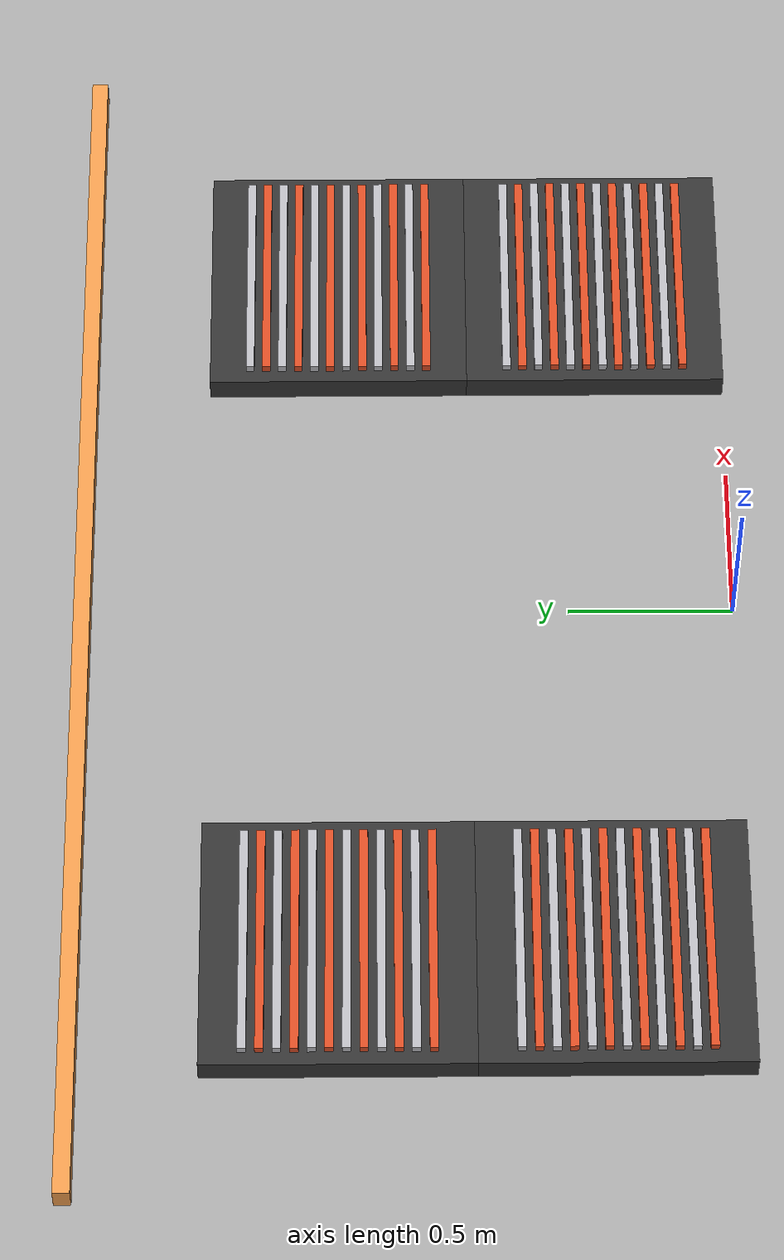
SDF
<sdf version="1.9">
 <world name="electrolysis_8_baths_world">
  <model name="ground_plane">
   <static>true</static>
   <link name="link">
    <collision name="collision">
     <geometry><plane><normal>0 0 1</normal><size>20 20</size></plane></geometry>
    </collision>
    <visual name="visual">
     <geometry><plane><normal>0 0 1</normal><size>20 20</size></plane></geometry>
     <material><ambient>0.65 0.65 0.65 1</ambient><diffuse>0.65 0.65 0.65 1</diffuse></material>
    </visual>
   </link>
  </model>
  <model name="bath_3">
   <static>true</static>
   <pose>-1.2000 0.4000 0.0600 0 0 0</pose>
   <link name="link">
    <collision name="collision"><geometry><box><size>0.8000 0.8000 0.0800</size></box></geometry></collision>
    <visual name="visual">
     <geometry><box><size>0.8000 0.8000 0.0800</size></box></geometry>
     <material><ambient>0.20 0.20 0.20 1</ambient><diffuse>0.20 0.20 0.20 1</diffuse></material>
    </visual>
   </link>
  </model>
  <model name="bath_3_anode_01">
   <static>true</static>
   <pose>-1.2000 0.1250 0.1125 0 0 0</pose>
   <link name="link">
    <collision name="collision"><geometry><box><size>0.7200 0.0250 0.0250</size></box></geometry></collision>
    <visual name="visual">
     <geometry><box><size>0.7200 0.0250 0.0250</size></box></geometry>
     <material><ambient>0.85 0.30 0.14 1</ambient><diffuse>0.85 0.30 0.14 1</diffuse></material>
    </visual>
   </link>
  </model>
  <model name="bath_3_cathode_02">
   <static>true</static>
   <pose>-1.2000 0.1750 0.1125 0 0 0</pose>
   <link name="link">
    <collision name="collision"><geometry><box><size>0.7200 0.0250 0.0250</size></box></geometry></collision>
    <visual name="visual">
     <geometry><box><size>0.7200 0.0250 0.0250</size></box></geometry>
     <material><ambient>0.72 0.72 0.74 1</ambient><diffuse>0.72 0.72 0.74 1</diffuse></material>
    </visual>
   </link>
  </model>
  <model name="bath_3_anode_03">
   <static>true</static>
   <pose>-1.2000 0.2250 0.1125 0 0 0</pose>
   <link name="link">
    <collision name="collision"><geometry><box><size>0.7200 0.0250 0.0250</size></box></geometry></collision>
    <visual name="visual">
     <geometry><box><size>0.7200 0.0250 0.0250</size></box></geometry>
     <material><ambient>0.85 0.30 0.14 1</ambient><diffuse>0.85 0.30 0.14 1</diffuse></material>
    </visual>
   </link>
  </model>
  <model name="bath_3_cathode_04">
   <static>true</static>
   <pose>-1.2000 0.2750 0.1125 0 0 0</pose>
   <link name="link">
    <collision name="collision"><geometry><box><size>0.7200 0.0250 0.0250</size></box></geometry></collision>
    <visual name="visual">
     <geometry><box><size>0.7200 0.0250 0.0250</size></box></geometry>
     <material><ambient>0.72 0.72 0.74 1</ambient><diffuse>0.72 0.72 0.74 1</diffuse></material>
    </visual>
   </link>
  </model>
  <model name="bath_3_anode_05">
   <static>true</static>
   <pose>-1.2000 0.3250 0.1125 0 0 0</pose>
   <link name="link">
    <collision name="collision"><geometry><box><size>0.7200 0.0250 0.0250</size></box></geometry></collision>
    <visual name="visual">
     <geometry><box><size>0.7200 0.0250 0.0250</size></box></geometry>
     <material><ambient>0.85 0.30 0.14 1</ambient><diffuse>0.85 0.30 0.14 1</diffuse></material>
    </visual>
   </link>
  </model>
  <model name="bath_3_cathode_06">
   <static>true</static>
   <pose>-1.2000 0.3750 0.1125 0 0 0</pose>
   <link name="link">
    <collision name="collision"><geometry><box><size>0.7200 0.0250 0.0250</size></box></geometry></collision>
    <visual name="visual">
     <geometry><box><size>0.7200 0.0250 0.0250</size></box></geometry>
     <material><ambient>0.72 0.72 0.74 1</ambient><diffuse>0.72 0.72 0.74 1</diffuse></material>
    </visual>
   </link>
  </model>
  <model name="bath_3_anode_07">
   <static>true</static>
   <pose>-1.2000 0.4250 0.1125 0 0 0</pose>
   <link name="link">
    <collision name="collision"><geometry><box><size>0.7200 0.0250 0.0250</size></box></geometry></collision>
    <visual name="visual">
     <geometry><box><size>0.7200 0.0250 0.0250</size></box></geometry>
     <material><ambient>0.85 0.30 0.14 1</ambient><diffuse>0.85 0.30 0.14 1</diffuse></material>
    </visual>
   </link>
  </model>
  <model name="bath_3_cathode_08">
   <static>true</static>
   <pose>-1.2000 0.4750 0.1125 0 0 0</pose>
   <link name="link">
    <collision name="collision"><geometry><box><size>0.7200 0.0250 0.0250</size></box></geometry></collision>
    <visual name="visual">
     <geometry><box><size>0.7200 0.0250 0.0250</size></box></geometry>
     <material><ambient>0.72 0.72 0.74 1</ambient><diffuse>0.72 0.72 0.74 1</diffuse></material>
    </visual>
   </link>
  </model>
  <model name="bath_3_anode_09">
   <static>true</static>
   <pose>-1.2000 0.5250 0.1125 0 0 0</pose>
   <link name="link">
    <collision name="collision"><geometry><box><size>0.7200 0.0250 0.0250</size></box></geometry></collision>
    <visual name="visual">
     <geometry><box><size>0.7200 0.0250 0.0250</size></box></geometry>
     <material><ambient>0.85 0.30 0.14 1</ambient><diffuse>0.85 0.30 0.14 1</diffuse></material>
    </visual>
   </link>
  </model>
  <model name="bath_3_cathode_10">
   <static>true</static>
   <pose>-1.2000 0.5750 0.1125 0 0 0</pose>
   <link name="link">
    <collision name="collision"><geometry><box><size>0.7200 0.0250 0.0250</size></box></geometry></collision>
    <visual name="visual">
     <geometry><box><size>0.7200 0.0250 0.0250</size></box></geometry>
     <material><ambient>0.72 0.72 0.74 1</ambient><diffuse>0.72 0.72 0.74 1</diffuse></material>
    </visual>
   </link>
  </model>
  <model name="bath_3_anode_11">
   <static>true</static>
   <pose>-1.2000 0.6250 0.1125 0 0 0</pose>
   <link name="link">
    <collision name="collision"><geometry><box><size>0.7200 0.0250 0.0250</size></box></geometry></collision>
    <visual name="visual">
     <geometry><box><size>0.7200 0.0250 0.0250</size></box></geometry>
     <material><ambient>0.85 0.30 0.14 1</ambient><diffuse>0.85 0.30 0.14 1</diffuse></material>
    </visual>
   </link>
  </model>
  <model name="bath_3_cathode_12">
   <static>true</static>
   <pose>-1.2000 0.6750 0.1125 0 0 0</pose>
   <link name="link">
    <collision name="collision"><geometry><box><size>0.7200 0.0250 0.0250</size></box></geometry></collision>
    <visual name="visual">
     <geometry><box><size>0.7200 0.0250 0.0250</size></box></geometry>
     <material><ambient>0.72 0.72 0.74 1</ambient><diffuse>0.72 0.72 0.74 1</diffuse></material>
    </visual>
   </link>
  </model>
  <model name="bath_4">
   <static>true</static>
   <pose>-1.2000 1.2000 0.0600 0 0 0</pose>
   <link name="link">
    <collision name="collision"><geometry><box><size>0.8000 0.8000 0.0800</size></box></geometry></collision>
    <visual name="visual">
     <geometry><box><size>0.8000 0.8000 0.0800</size></box></geometry>
     <material><ambient>0.20 0.20 0.20 1</ambient><diffuse>0.20 0.20 0.20 1</diffuse></material>
    </visual>
   </link>
  </model>
  <model name="bath_4_anode_01">
   <static>true</static>
   <pose>-1.2000 0.9250 0.1125 0 0 0</pose>
   <link name="link">
    <collision name="collision"><geometry><box><size>0.7200 0.0250 0.0250</size></box></geometry></collision>
    <visual name="visual">
     <geometry><box><size>0.7200 0.0250 0.0250</size></box></geometry>
     <material><ambient>0.85 0.30 0.14 1</ambient><diffuse>0.85 0.30 0.14 1</diffuse></material>
    </visual>
   </link>
  </model>
  <model name="bath_4_cathode_02">
   <static>true</static>
   <pose>-1.2000 0.9750 0.1125 0 0 0</pose>
   <link name="link">
    <collision name="collision"><geometry><box><size>0.7200 0.0250 0.0250</size></box></geometry></collision>
    <visual name="visual">
     <geometry><box><size>0.7200 0.0250 0.0250</size></box></geometry>
     <material><ambient>0.72 0.72 0.74 1</ambient><diffuse>0.72 0.72 0.74 1</diffuse></material>
    </visual>
   </link>
  </model>
  <model name="bath_4_anode_03">
   <static>true</static>
   <pose>-1.2000 1.0250 0.1125 0 0 0</pose>
   <link name="link">
    <collision name="collision"><geometry><box><size>0.7200 0.0250 0.0250</size></box></geometry></collision>
    <visual name="visual">
     <geometry><box><size>0.7200 0.0250 0.0250</size></box></geometry>
     <material><ambient>0.85 0.30 0.14 1</ambient><diffuse>0.85 0.30 0.14 1</diffuse></material>
    </visual>
   </link>
  </model>
  <model name="bath_4_cathode_04">
   <static>true</static>
   <pose>-1.2000 1.0750 0.1125 0 0 0</pose>
   <link name="link">
    <collision name="collision"><geometry><box><size>0.7200 0.0250 0.0250</size></box></geometry></collision>
    <visual name="visual">
     <geometry><box><size>0.7200 0.0250 0.0250</size></box></geometry>
     <material><ambient>0.72 0.72 0.74 1</ambient><diffuse>0.72 0.72 0.74 1</diffuse></material>
    </visual>
   </link>
  </model>
  <model name="bath_4_anode_05">
   <static>true</static>
   <pose>-1.2000 1.1250 0.1125 0 0 0</pose>
   <link name="link">
    <collision name="collision"><geometry><box><size>0.7200 0.0250 0.0250</size></box></geometry></collision>
    <visual name="visual">
     <geometry><box><size>0.7200 0.0250 0.0250</size></box></geometry>
     <material><ambient>0.85 0.30 0.14 1</ambient><diffuse>0.85 0.30 0.14 1</diffuse></material>
    </visual>
   </link>
  </model>
  <model name="bath_4_cathode_06">
   <static>true</static>
   <pose>-1.2000 1.1750 0.1125 0 0 0</pose>
   <link name="link">
    <collision name="collision"><geometry><box><size>0.7200 0.0250 0.0250</size></box></geometry></collision>
    <visual name="visual">
     <geometry><box><size>0.7200 0.0250 0.0250</size></box></geometry>
     <material><ambient>0.72 0.72 0.74 1</ambient><diffuse>0.72 0.72 0.74 1</diffuse></material>
    </visual>
   </link>
  </model>
  <model name="bath_4_anode_07">
   <static>true</static>
   <pose>-1.2000 1.2250 0.1125 0 0 0</pose>
   <link name="link">
    <collision name="collision"><geometry><box><size>0.7200 0.0250 0.0250</size></box></geometry></collision>
    <visual name="visual">
     <geometry><box><size>0.7200 0.0250 0.0250</size></box></geometry>
     <material><ambient>0.85 0.30 0.14 1</ambient><diffuse>0.85 0.30 0.14 1</diffuse></material>
    </visual>
   </link>
  </model>
  <model name="bath_4_cathode_08">
   <static>true</static>
   <pose>-1.2000 1.2750 0.1125 0 0 0</pose>
   <link name="link">
    <collision name="collision"><geometry><box><size>0.7200 0.0250 0.0250</size></box></geometry></collision>
    <visual name="visual">
     <geometry><box><size>0.7200 0.0250 0.0250</size></box></geometry>
     <material><ambient>0.72 0.72 0.74 1</ambient><diffuse>0.72 0.72 0.74 1</diffuse></material>
    </visual>
   </link>
  </model>
  <model name="bath_4_anode_09">
   <static>true</static>
   <pose>-1.2000 1.3250 0.1125 0 0 0</pose>
   <link name="link">
    <collision name="collision"><geometry><box><size>0.7200 0.0250 0.0250</size></box></geometry></collision>
    <visual name="visual">
     <geometry><box><size>0.7200 0.0250 0.0250</size></box></geometry>
     <material><ambient>0.85 0.30 0.14 1</ambient><diffuse>0.85 0.30 0.14 1</diffuse></material>
    </visual>
   </link>
  </model>
  <model name="bath_4_cathode_10">
   <static>true</static>
   <pose>-1.2000 1.3750 0.1125 0 0 0</pose>
   <link name="link">
    <collision name="collision"><geometry><box><size>0.7200 0.0250 0.0250</size></box></geometry></collision>
    <visual name="visual">
     <geometry><box><size>0.7200 0.0250 0.0250</size></box></geometry>
     <material><ambient>0.72 0.72 0.74 1</ambient><diffuse>0.72 0.72 0.74 1</diffuse></material>
    </visual>
   </link>
  </model>
  <model name="bath_4_anode_11">
   <static>true</static>
   <pose>-1.2000 1.4250 0.1125 0 0 0</pose>
   <link name="link">
    <collision name="collision"><geometry><box><size>0.7200 0.0250 0.0250</size></box></geometry></collision>
    <visual name="visual">
     <geometry><box><size>0.7200 0.0250 0.0250</size></box></geometry>
     <material><ambient>0.85 0.30 0.14 1</ambient><diffuse>0.85 0.30 0.14 1</diffuse></material>
    </visual>
   </link>
  </model>
  <model name="bath_4_cathode_12">
   <static>true</static>
   <pose>-1.2000 1.4750 0.1125 0 0 0</pose>
   <link name="link">
    <collision name="collision"><geometry><box><size>0.7200 0.0250 0.0250</size></box></geometry></collision>
    <visual name="visual">
     <geometry><box><size>0.7200 0.0250 0.0250</size></box></geometry>
     <material><ambient>0.72 0.72 0.74 1</ambient><diffuse>0.72 0.72 0.74 1</diffuse></material>
    </visual>
   </link>
  </model>
  <model name="bath_7">
   <static>true</static>
   <pose>1.2000 0.4000 0.0600 0 0 0</pose>
   <link name="link">
    <collision name="collision"><geometry><box><size>0.8000 0.8000 0.0800</size></box></geometry></collision>
    <visual name="visual">
     <geometry><box><size>0.8000 0.8000 0.0800</size></box></geometry>
     <material><ambient>0.20 0.20 0.20 1</ambient><diffuse>0.20 0.20 0.20 1</diffuse></material>
    </visual>
   </link>
  </model>
  <model name="bath_7_anode_01">
   <static>true</static>
   <pose>1.2000 0.1250 0.1125 0 0 0</pose>
   <link name="link">
    <collision name="collision"><geometry><box><size>0.7200 0.0250 0.0250</size></box></geometry></collision>
    <visual name="visual">
     <geometry><box><size>0.7200 0.0250 0.0250</size></box></geometry>
     <material><ambient>0.85 0.30 0.14 1</ambient><diffuse>0.85 0.30 0.14 1</diffuse></material>
    </visual>
   </link>
  </model>
  <model name="bath_7_cathode_02">
   <static>true</static>
   <pose>1.2000 0.1750 0.1125 0 0 0</pose>
   <link name="link">
    <collision name="collision"><geometry><box><size>0.7200 0.0250 0.0250</size></box></geometry></collision>
    <visual name="visual">
     <geometry><box><size>0.7200 0.0250 0.0250</size></box></geometry>
     <material><ambient>0.72 0.72 0.74 1</ambient><diffuse>0.72 0.72 0.74 1</diffuse></material>
    </visual>
   </link>
  </model>
  <model name="bath_7_anode_03">
   <static>true</static>
   <pose>1.2000 0.2250 0.1125 0 0 0</pose>
   <link name="link">
    <collision name="collision"><geometry><box><size>0.7200 0.0250 0.0250</size></box></geometry></collision>
    <visual name="visual">
     <geometry><box><size>0.7200 0.0250 0.0250</size></box></geometry>
     <material><ambient>0.85 0.30 0.14 1</ambient><diffuse>0.85 0.30 0.14 1</diffuse></material>
    </visual>
   </link>
  </model>
  <model name="bath_7_cathode_04">
   <static>true</static>
   <pose>1.2000 0.2750 0.1125 0 0 0</pose>
   <link name="link">
    <collision name="collision"><geometry><box><size>0.7200 0.0250 0.0250</size></box></geometry></collision>
    <visual name="visual">
     <geometry><box><size>0.7200 0.0250 0.0250</size></box></geometry>
     <material><ambient>0.72 0.72 0.74 1</ambient><diffuse>0.72 0.72 0.74 1</diffuse></material>
    </visual>
   </link>
  </model>
  <model name="bath_7_anode_05">
   <static>true</static>
   <pose>1.2000 0.3250 0.1125 0 0 0</pose>
   <link name="link">
    <collision name="collision"><geometry><box><size>0.7200 0.0250 0.0250</size></box></geometry></collision>
    <visual name="visual">
     <geometry><box><size>0.7200 0.0250 0.0250</size></box></geometry>
     <material><ambient>0.85 0.30 0.14 1</ambient><diffuse>0.85 0.30 0.14 1</diffuse></material>
    </visual>
   </link>
  </model>
  <model name="bath_7_cathode_06">
   <static>true</static>
   <pose>1.2000 0.3750 0.1125 0 0 0</pose>
   <link name="link">
    <collision name="collision"><geometry><box><size>0.7200 0.0250 0.0250</size></box></geometry></collision>
    <visual name="visual">
     <geometry><box><size>0.7200 0.0250 0.0250</size></box></geometry>
     <material><ambient>0.72 0.72 0.74 1</ambient><diffuse>0.72 0.72 0.74 1</diffuse></material>
    </visual>
   </link>
  </model>
  <model name="bath_7_anode_07">
   <static>true</static>
   <pose>1.2000 0.4250 0.1125 0 0 0</pose>
   <link name="link">
    <collision name="collision"><geometry><box><size>0.7200 0.0250 0.0250</size></box></geometry></collision>
    <visual name="visual">
     <geometry><box><size>0.7200 0.0250 0.0250</size></box></geometry>
     <material><ambient>0.85 0.30 0.14 1</ambient><diffuse>0.85 0.30 0.14 1</diffuse></material>
    </visual>
   </link>
  </model>
  <model name="bath_7_cathode_08">
   <static>true</static>
   <pose>1.2000 0.4750 0.1125 0 0 0</pose>
   <link name="link">
    <collision name="collision"><geometry><box><size>0.7200 0.0250 0.0250</size></box></geometry></collision>
    <visual name="visual">
     <geometry><box><size>0.7200 0.0250 0.0250</size></box></geometry>
     <material><ambient>0.72 0.72 0.74 1</ambient><diffuse>0.72 0.72 0.74 1</diffuse></material>
    </visual>
   </link>
  </model>
  <model name="bath_7_anode_09">
   <static>true</static>
   <pose>1.2000 0.5250 0.1125 0 0 0</pose>
   <link name="link">
    <collision name="collision"><geometry><box><size>0.7200 0.0250 0.0250</size></box></geometry></collision>
    <visual name="visual">
     <geometry><box><size>0.7200 0.0250 0.0250</size></box></geometry>
     <material><ambient>0.85 0.30 0.14 1</ambient><diffuse>0.85 0.30 0.14 1</diffuse></material>
    </visual>
   </link>
  </model>
  <model name="bath_7_cathode_10">
   <static>true</static>
   <pose>1.2000 0.5750 0.1125 0 0 0</pose>
   <link name="link">
    <collision name="collision"><geometry><box><size>0.7200 0.0250 0.0250</size></box></geometry></collision>
    <visual name="visual">
     <geometry><box><size>0.7200 0.0250 0.0250</size></box></geometry>
     <material><ambient>0.72 0.72 0.74 1</ambient><diffuse>0.72 0.72 0.74 1</diffuse></material>
    </visual>
   </link>
  </model>
  <model name="bath_7_anode_11">
   <static>true</static>
   <pose>1.2000 0.6250 0.1125 0 0 0</pose>
   <link name="link">
    <collision name="collision"><geometry><box><size>0.7200 0.0250 0.0250</size></box></geometry></collision>
    <visual name="visual">
     <geometry><box><size>0.7200 0.0250 0.0250</size></box></geometry>
     <material><ambient>0.85 0.30 0.14 1</ambient><diffuse>0.85 0.30 0.14 1</diffuse></material>
    </visual>
   </link>
  </model>
  <model name="bath_7_cathode_12">
   <static>true</static>
   <pose>1.2000 0.6750 0.1125 0 0 0</pose>
   <link name="link">
    <collision name="collision"><geometry><box><size>0.7200 0.0250 0.0250</size></box></geometry></collision>
    <visual name="visual">
     <geometry><box><size>0.7200 0.0250 0.0250</size></box></geometry>
     <material><ambient>0.72 0.72 0.74 1</ambient><diffuse>0.72 0.72 0.74 1</diffuse></material>
    </visual>
   </link>
  </model>
  <model name="bath_8">
   <static>true</static>
   <pose>1.2000 1.2000 0.0600 0 0 0</pose>
   <link name="link">
    <collision name="collision"><geometry><box><size>0.8000 0.8000 0.0800</size></box></geometry></collision>
    <visual name="visual">
     <geometry><box><size>0.8000 0.8000 0.0800</size></box></geometry>
     <material><ambient>0.20 0.20 0.20 1</ambient><diffuse>0.20 0.20 0.20 1</diffuse></material>
    </visual>
   </link>
  </model>
  <model name="bath_8_anode_01">
   <static>true</static>
   <pose>1.2000 0.9250 0.1125 0 0 0</pose>
   <link name="link">
    <collision name="collision"><geometry><box><size>0.7200 0.0250 0.0250</size></box></geometry></collision>
    <visual name="visual">
     <geometry><box><size>0.7200 0.0250 0.0250</size></box></geometry>
     <material><ambient>0.85 0.30 0.14 1</ambient><diffuse>0.85 0.30 0.14 1</diffuse></material>
    </visual>
   </link>
  </model>
  <model name="bath_8_cathode_02">
   <static>true</static>
   <pose>1.2000 0.9750 0.1125 0 0 0</pose>
   <link name="link">
    <collision name="collision"><geometry><box><size>0.7200 0.0250 0.0250</size></box></geometry></collision>
    <visual name="visual">
     <geometry><box><size>0.7200 0.0250 0.0250</size></box></geometry>
     <material><ambient>0.72 0.72 0.74 1</ambient><diffuse>0.72 0.72 0.74 1</diffuse></material>
    </visual>
   </link>
  </model>
  <model name="bath_8_anode_03">
   <static>true</static>
   <pose>1.2000 1.0250 0.1125 0 0 0</pose>
   <link name="link">
    <collision name="collision"><geometry><box><size>0.7200 0.0250 0.0250</size></box></geometry></collision>
    <visual name="visual">
     <geometry><box><size>0.7200 0.0250 0.0250</size></box></geometry>
     <material><ambient>0.85 0.30 0.14 1</ambient><diffuse>0.85 0.30 0.14 1</diffuse></material>
    </visual>
   </link>
  </model>
  <model name="bath_8_cathode_04">
   <static>true</static>
   <pose>1.2000 1.0750 0.1125 0 0 0</pose>
   <link name="link">
    <collision name="collision"><geometry><box><size>0.7200 0.0250 0.0250</size></box></geometry></collision>
    <visual name="visual">
     <geometry><box><size>0.7200 0.0250 0.0250</size></box></geometry>
     <material><ambient>0.72 0.72 0.74 1</ambient><diffuse>0.72 0.72 0.74 1</diffuse></material>
    </visual>
   </link>
  </model>
  <model name="bath_8_anode_05">
   <static>true</static>
   <pose>1.2000 1.1250 0.1125 0 0 0</pose>
   <link name="link">
    <collision name="collision"><geometry><box><size>0.7200 0.0250 0.0250</size></box></geometry></collision>
    <visual name="visual">
     <geometry><box><size>0.7200 0.0250 0.0250</size></box></geometry>
     <material><ambient>0.85 0.30 0.14 1</ambient><diffuse>0.85 0.30 0.14 1</diffuse></material>
    </visual>
   </link>
  </model>
  <model name="bath_8_cathode_06">
   <static>true</static>
   <pose>1.2000 1.1750 0.1125 0 0 0</pose>
   <link name="link">
    <collision name="collision"><geometry><box><size>0.7200 0.0250 0.0250</size></box></geometry></collision>
    <visual name="visual">
     <geometry><box><size>0.7200 0.0250 0.0250</size></box></geometry>
     <material><ambient>0.72 0.72 0.74 1</ambient><diffuse>0.72 0.72 0.74 1</diffuse></material>
    </visual>
   </link>
  </model>
  <model name="bath_8_anode_07">
   <static>true</static>
   <pose>1.2000 1.2250 0.1125 0 0 0</pose>
   <link name="link">
    <collision name="collision"><geometry><box><size>0.7200 0.0250 0.0250</size></box></geometry></collision>
    <visual name="visual">
     <geometry><box><size>0.7200 0.0250 0.0250</size></box></geometry>
     <material><ambient>0.85 0.30 0.14 1</ambient><diffuse>0.85 0.30 0.14 1</diffuse></material>
    </visual>
   </link>
  </model>
  <model name="bath_8_cathode_08">
   <static>true</static>
   <pose>1.2000 1.2750 0.1125 0 0 0</pose>
   <link name="link">
    <collision name="collision"><geometry><box><size>0.7200 0.0250 0.0250</size></box></geometry></collision>
    <visual name="visual">
     <geometry><box><size>0.7200 0.0250 0.0250</size></box></geometry>
     <material><ambient>0.72 0.72 0.74 1</ambient><diffuse>0.72 0.72 0.74 1</diffuse></material>
    </visual>
   </link>
  </model>
  <model name="bath_8_anode_09">
   <static>true</static>
   <pose>1.2000 1.3250 0.1125 0 0 0</pose>
   <link name="link">
    <collision name="collision"><geometry><box><size>0.7200 0.0250 0.0250</size></box></geometry></collision>
    <visual name="visual">
     <geometry><box><size>0.7200 0.0250 0.0250</size></box></geometry>
     <material><ambient>0.85 0.30 0.14 1</ambient><diffuse>0.85 0.30 0.14 1</diffuse></material>
    </visual>
   </link>
  </model>
  <model name="bath_8_cathode_10">
   <static>true</static>
   <pose>1.2000 1.3750 0.1125 0 0 0</pose>
   <link name="link">
    <collision name="collision"><geometry><box><size>0.7200 0.0250 0.0250</size></box></geometry></collision>
    <visual name="visual">
     <geometry><box><size>0.7200 0.0250 0.0250</size></box></geometry>
     <material><ambient>0.72 0.72 0.74 1</ambient><diffuse>0.72 0.72 0.74 1</diffuse></material>
    </visual>
   </link>
  </model>
  <model name="bath_8_anode_11">
   <static>true</static>
   <pose>1.2000 1.4250 0.1125 0 0 0</pose>
   <link name="link">
    <collision name="collision"><geometry><box><size>0.7200 0.0250 0.0250</size></box></geometry></collision>
    <visual name="visual">
     <geometry><box><size>0.7200 0.0250 0.0250</size></box></geometry>
     <material><ambient>0.85 0.30 0.14 1</ambient><diffuse>0.85 0.30 0.14 1</diffuse></material>
    </visual>
   </link>
  </model>
  <model name="bath_8_cathode_12">
   <static>true</static>
   <pose>1.2000 1.4750 0.1125 0 0 0</pose>
   <link name="link">
    <collision name="collision"><geometry><box><size>0.7200 0.0250 0.0250</size></box></geometry></collision>
    <visual name="visual">
     <geometry><box><size>0.7200 0.0250 0.0250</size></box></geometry>
     <material><ambient>0.72 0.72 0.74 1</ambient><diffuse>0.72 0.72 0.74 1</diffuse></material>
    </visual>
   </link>
  </model>
  <model name="north_wall">
   <static>true</static>
   <pose>0.0000 1.9750 0.0600 0 0 0</pose>
   <link name="link">
    <collision name="collision"><geometry><box><size>4.0000 0.0500 0.0800</size></box></geometry></collision>
    <visual name="visual">
     <geometry><box><size>4.0000 0.0500 0.0800</size></box></geometry>
     <material><ambient>0.92 0.60 0.30 1</ambient><diffuse>0.92 0.60 0.30 1</diffuse></material>
    </visual>
   </link>
  </model>
 </world>
</sdf>
